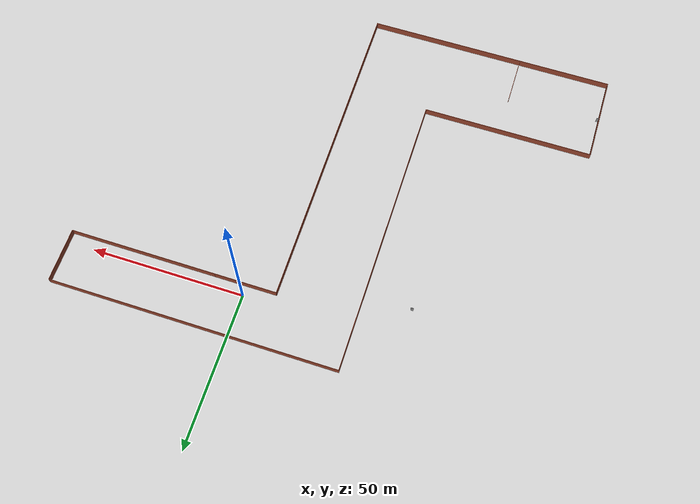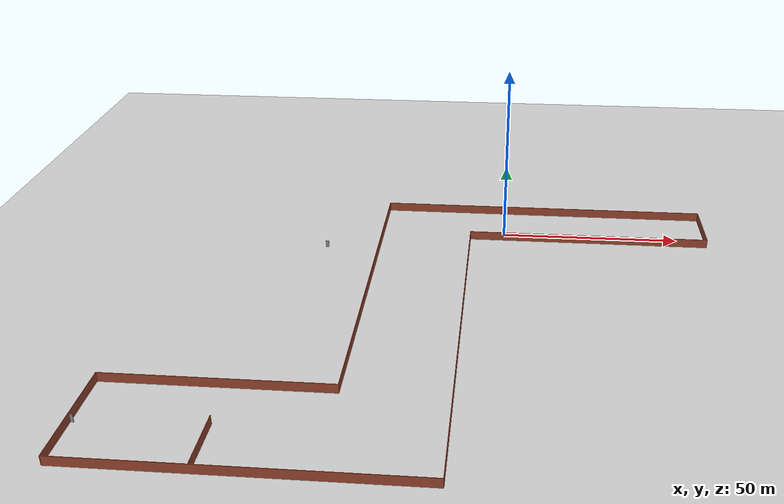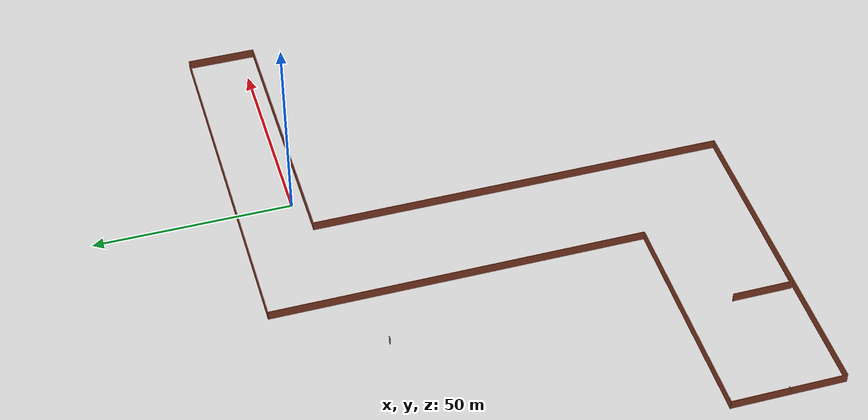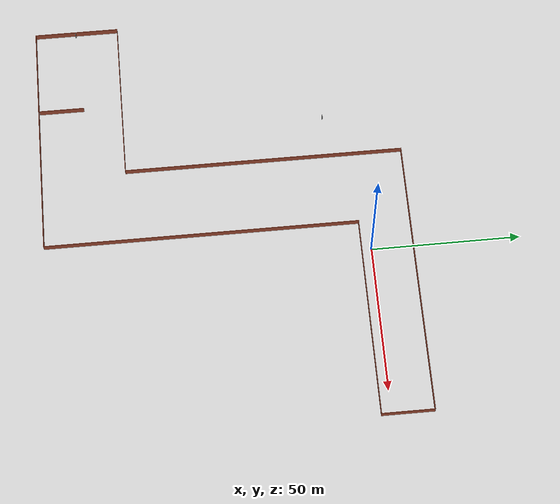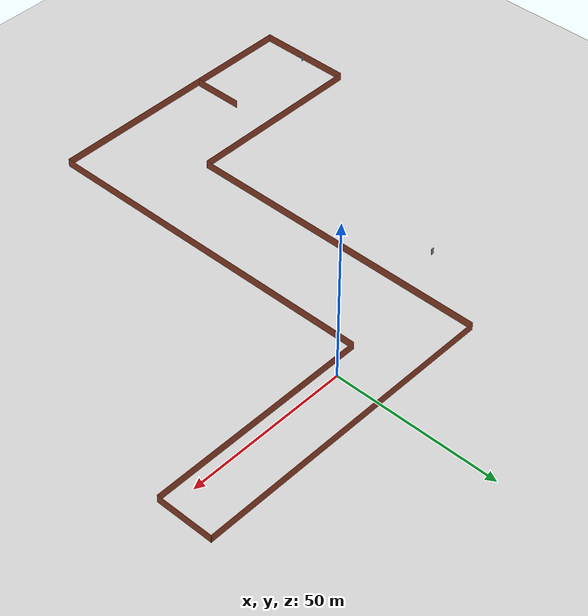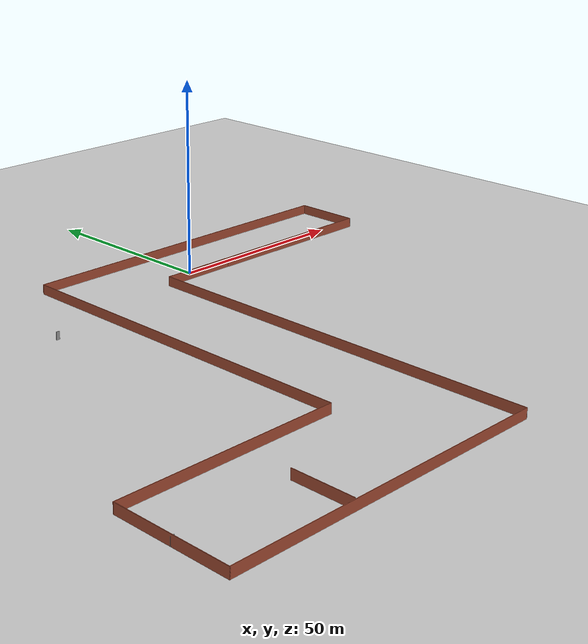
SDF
<sdf version="1.7">
 <world name="default">
  <light name="sun" type="directional">
   <pose>0 0 10 0 -0 0</pose>
   <diffuse>0.8 0.8 0.8 1</diffuse>
   <specular>0.2 0.2 0.2 1</specular>
   <attenuation>
    <range>1000</range>
    <constant>0.9</constant>
    <linear>0.01</linear>
    <quadratic>0.001</quadratic>
   </attenuation>
   <direction>-0.5 0.1 -0.9</direction>
   <spot><inner_angle>0</inner_angle><outer_angle>0</outer_angle><falloff>0</falloff></spot>
  </light>
  <model name="ground_plane">
   <static>1</static>
   <link name="link">
    <collision name="collision">
     <geometry><plane><normal>0 0 1</normal><size>100 100</size></plane></geometry>
     <surface><friction><ode><mu>100</mu><mu2>50</mu2></ode></friction></surface>
    </collision>
    <visual name="visual">
     <cast_shadows>0</cast_shadows>
     <geometry><plane><normal>0 0 1</normal><size>100 100</size></plane></geometry>
     <material>
      <script><uri>file://media/materials/scripts/gazebo.material</uri><name>Gazebo/Grey</name></script>
     </material>
    </visual>
   </link>
  </model>
  <gravity>0 0 -9.8</gravity>
  <magnetic_field>6e-06 2.3e-05 -4.2e-05</magnetic_field>
  <atmosphere type="adiabatic"/>
  <physics type="ode">
   <max_step_size>0.001</max_step_size>
   <real_time_factor>1</real_time_factor>
   <real_time_update_rate>1000</real_time_update_rate>
  </physics>
  <scene><ambient>0.4 0.4 0.4 1</ambient><background>0.7 0.7 0.7 1</background><shadows>1</shadows></scene>
  <spherical_coordinates>
   <surface_model>EARTH_WGS84</surface_model>
   <latitude_deg>0</latitude_deg>
   <longitude_deg>0</longitude_deg>
   <elevation>0</elevation>
   <heading_deg>0</heading_deg>
  </spherical_coordinates>
  <model name="Warehouse">
   <pose>-16.566 -47.4173 0 0 -0 0</pose>
   <link name="Door_1">
    <collision name="Door_1_Collision">
     <geometry><box><size>0.9 0.17 2</size></box></geometry>
     <pose>0 0 1 0 -0 0</pose>
    </collision>
    <visual name="Door_1_Visual">
     <pose>0 0 1 0 -0 0</pose>
     <geometry><box><size>0.9 0.17 2</size></box></geometry>
     <material>
      <script><uri>file://media/materials/scripts/gazebo.material</uri><name>Gazebo/Grey</name></script>
     </material>
    </visual>
    <pose>-34.1916 35.9157 0 0 -0 0</pose>
   </link>
   <link name="Door_3">
    <collision name="Door_3_Collision">
     <geometry><box><size>0.9 0.17 2</size></box></geometry>
     <pose>0 0 1 0 -0 0</pose>
    </collision>
    <visual name="Door_3_Visual">
     <pose>0 0 1 0 -0 0</pose>
     <geometry><box><size>0.9 0.17 2</size></box></geometry>
     <material>
      <script><uri>file://media/materials/scripts/gazebo.material</uri><name>Gazebo/Grey</name></script>
     </material>
    </visual>
    <pose>-74.4806 -47.5475 0 0 -0 0</pose>
   </link>
   <link name="Wall_1">
    <collision name="Wall_1_Collision">
     <geometry><box><size>48.25 0.15 2.5</size></box></geometry>
     <pose>0 0 1.25 0 -0 0</pose>
    </collision>
    <visual name="Wall_1_Visual">
     <pose>0 0 1.25 0 -0 0</pose>
     <geometry><box><size>48.25 0.15 2.5</size></box></geometry>
     <material>
      <script><uri>file://media/materials/scripts/gazebo.material</uri><name>Gazebo/Bricks</name></script>
      <ambient>1 1 1 1</ambient>
     </material>
     <meta><layer>0</layer></meta>
    </visual>
    <pose>50.8 44.125 0 0 -0 0</pose>
   </link>
   <link name="Wall_10">
    <collision name="Wall_10_Collision">
     <geometry><box><size>94 0.15 2.5</size></box></geometry>
     <pose>0 0 1.25 0 -0 0</pose>
    </collision>
    <visual name="Wall_10_Visual">
     <pose>0 0 1.25 0 -0 0</pose>
     <geometry><box><size>94 0.15 2.5</size></box></geometry>
     <material>
      <script><uri>file://media/materials/scripts/gazebo.material</uri><name>Gazebo/Bricks</name></script>
      <ambient>1 1 1 1</ambient>
     </material>
     <meta><layer>0</layer></meta>
    </visual>
    <pose>27.925 61.475 0 0 -0 3.14159</pose>
   </link>
   <link name="Wall_11">
    <collision name="Wall_11_Collision">
     <geometry><box><size>94.5 0.15 2.5</size></box></geometry>
     <pose>0 0 1.25 0 -0 0</pose>
    </collision>
    <visual name="Wall_11_Visual">
     <pose>0 0 1.25 0 -0 0</pose>
     <geometry><box><size>94.5 0.15 2.5</size></box></geometry>
     <material>
      <script><uri>file://media/materials/scripts/gazebo.material</uri><name>Gazebo/Bricks</name></script>
      <ambient>1 1 1 1</ambient>
     </material>
     <meta><layer>0</layer></meta>
    </visual>
    <pose>-19 14.3 0 0 -0 -1.5708</pose>
   </link>
   <link name="Wall_12">
    <collision name="Wall_12_Collision">
     <geometry><box><size>56 0.15 2.5</size></box></geometry>
     <pose>0 0 1.25 0 -0 0</pose>
    </collision>
    <visual name="Wall_12_Visual">
     <pose>0 0 1.25 0 -0 0</pose>
     <geometry><box><size>56 0.15 2.5</size></box></geometry>
     <material>
      <script><uri>file://media/materials/scripts/gazebo.material</uri><name>Gazebo/Bricks</name></script>
      <ambient>1 1 1 1</ambient>
     </material>
     <meta><layer>0</layer></meta>
    </visual>
    <pose>-46.925 -32.875 0 0 -0 3.14159</pose>
   </link>
   <link name="Wall_13">
    <collision name="Wall_13_Collision">
     <geometry><box><size>28.75 0.15 2.5</size></box></geometry>
     <pose>0 0 1.25 0 -0 0</pose>
    </collision>
    <visual name="Wall_13_Visual">
     <pose>0 0 1.25 0 -0 0</pose>
     <geometry><box><size>28.75 0.15 2.5</size></box></geometry>
     <material>
      <script><uri>file://media/materials/scripts/gazebo.material</uri><name>Gazebo/Bricks</name></script>
      <ambient>1 1 1 1</ambient>
     </material>
     <meta><layer>0</layer></meta>
    </visual>
    <pose>-74.85 -47.175 0 0 -0 -1.5708</pose>
   </link>
   <link name="Wall_14">
    <collision name="Wall_14_Collision">
     <geometry><box><size>81.75 0.15 2.5</size></box></geometry>
     <pose>0 0 1.25 0 -0 0</pose>
    </collision>
    <visual name="Wall_14_Visual">
     <pose>0 0 1.25 0 -0 0</pose>
     <geometry><box><size>81.75 0.15 2.5</size></box></geometry>
     <material>
      <script><uri>file://media/materials/scripts/gazebo.material</uri><name>Gazebo/Bricks</name></script>
      <ambient>1 1 1 1</ambient>
     </material>
     <meta><layer>0</layer></meta>
    </visual>
    <pose>-34.05 -61.475 0 0 -0 0</pose>
   </link>
   <link name="Wall_15">
    <collision name="Wall_15_Collision">
     <geometry><box><size>105.75 0.15 2.5</size></box></geometry>
     <pose>0 0 1.25 0 -0 0</pose>
    </collision>
    <visual name="Wall_15_Visual">
     <pose>0 0 1.25 0 -0 0</pose>
     <geometry><box><size>105.75 0.15 2.5</size></box></geometry>
     <material>
      <script><uri>file://media/materials/scripts/gazebo.material</uri><name>Gazebo/Bricks</name></script>
      <ambient>1 1 1 1</ambient>
     </material>
     <meta><layer>0</layer></meta>
    </visual>
    <pose>6.75 -8.675 0 0 -0 1.5708</pose>
   </link>
   <link name="Wall_16">
    <collision name="Wall_16_Collision">
     <geometry><box><size>20.25 0.15 2.5</size></box></geometry>
     <pose>0 0 1.25 0 -0 0</pose>
    </collision>
    <visual name="Wall_16_Visual">
     <pose>0 0 1.25 0 -0 0</pose>
     <geometry><box><size>20.25 0.15 2.5</size></box></geometry>
     <material>
      <script><uri>file://media/materials/scripts/gazebo.material</uri><name>Gazebo/Bricks</name></script>
      <ambient>1 1 1 1</ambient>
     </material>
     <meta><layer>0</layer></meta>
    </visual>
    <pose>16.8 44.125 0 0 -0 0</pose>
   </link>
   <link name="Wall_18">
    <collision name="Wall_18_Collision">
     <geometry><box><size>15.25 0.15 2.5</size></box></geometry>
     <pose>0 0 1.25 0 -0 0</pose>
    </collision>
    <visual name="Wall_18_Visual">
     <pose>0 0 1.25 0 -0 0</pose>
     <geometry><box><size>15.25 0.15 2.5</size></box></geometry>
     <material>
      <script><uri>file://media/materials/scripts/gazebo.material</uri><name>Gazebo/Bricks</name></script>
      <ambient>1 1 1 1</ambient>
     </material>
     <meta><layer>0</layer></meta>
    </visual>
    <pose>-44.344 -53.5093 0 0 -0 1.5708</pose>
   </link>
   <link name="Wall_9">
    <collision name="Wall_9_Collision">
     <geometry><box><size>17.5 0.15 2.5</size></box></geometry>
     <pose>0 0 1.25 0 -0 0</pose>
    </collision>
    <visual name="Wall_9_Visual">
     <pose>0 0 1.25 0 -0 0</pose>
     <geometry><box><size>17.5 0.15 2.5</size></box></geometry>
     <material>
      <script><uri>file://media/materials/scripts/gazebo.material</uri><name>Gazebo/Bricks</name></script>
      <ambient>1 1 1 1</ambient>
     </material>
     <meta><layer>0</layer></meta>
    </visual>
    <pose>74.85 52.8 0 0 -0 1.5708</pose>
   </link>
   <static>1</static>
  </model>
 </world>
</sdf>
